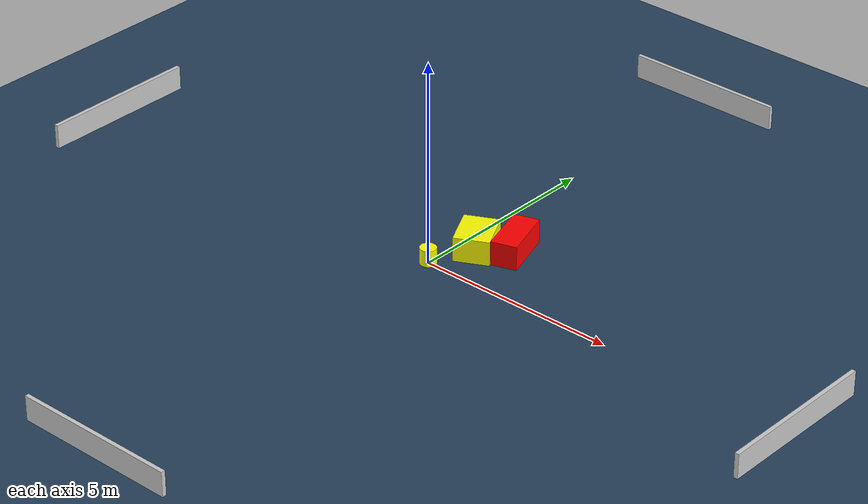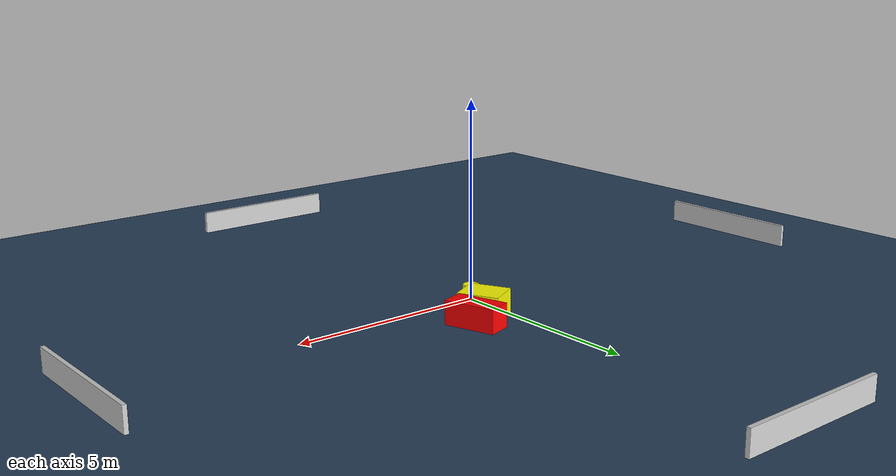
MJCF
<?xml version="1.0" ?>
<mujoco model="generated_environment">
  <option timestep="0.01" integrator="RK4" cone="elliptic"/>
  <default>
    <geom density="1"/>
  </default>
  <asset>
    <texture builtin="gradient" height="3072" name="skybox" rgb1="0.3 0.5 0.7" rgb2="0 0 0" type="skybox" width="512"/>
    <texture builtin="checker" height="300" name="groundplane" rgb1="0.2 0.3 0.4" rgb2="0.1 0.2 0.3" type="2d" width="300"/>
    <material name="groundplane" reflectance="0.2" texrepeat="5 5" texture="groundplane"/>
  </asset>
  <worldbody>
    <light dir="0 0 -1" directional="true" pos="0 0 1.5"/>
    <geom condim="3" friction="0.5 0.005 0.001" material="groundplane" name="floor" pos="0 0 0" size="0 0 0.05" type="plane"/>
    <body name="walls">
      <geom name="wall_1" condim="4" pos="-10.0 0.0 0.3" rgba="0.800000011920929 0.800000011920929 0.800000011920929 1.0" size="0.05 2.0 0.3" type="box"/>
      <geom name="wall_2" condim="4" pos="10.0 0.0 0.3" rgba="0.800000011920929 0.800000011920929 0.800000011920929 1.0" size="0.05 2.0 0.3" type="box"/>
      <geom name="wall_3" condim="4" pos="0.0 -10.0 0.3" rgba="0.800000011920929 0.800000011920929 0.800000011920929 1.0" size="2.0 0.05 0.3" type="box"/>
      <geom name="wall_4" condim="4" pos="0.0 10.0 0.3" rgba="0.800000011920929 0.800000011920929 0.800000011920929 1.0" size="2.0 0.05 0.3" type="box"/>
    </body>
    <body name="robot">
      <joint name="joint_x" type="slide" pos="0 0 0" axis="1 0 0"/>
      <joint name="joint_y" type="slide" pos="0 0 0" axis="0 1 0"/>
      <geom name="robot" type="cylinder" pos="0.0 0.0 0.2" size="0.2 0.2 0.0" mass="5.0" friction="1.0 0.005 0.0001" condim="4" rgba="1.0 1.0 0.0 1.0"/>
    </body>
    <body name="obstacle_1_movable">
      <geom name="obstacle_1_movable" condim="4" pos="0.48953003460540334 1.0697066180705537 0.3" euler="0 0 27.185673004473028" friction="0.0 0.005 0.001" rgba="1.0 1.0 0.0 1.0" size="0.4248592371224361 0.5242419963028581 0.3" type="box" mass="0.1"/>
      <joint type="free"/>
    </body>
    <body name="obstacle_2_static">
      <geom name="obstacle_2_static" condim="4" pos="1.1802044069515836 1.575942164808961 0.3" euler="0 0 197.62425872341575" friction="0.0 0.005 0.001" rgba="1.0 0.0 0.0 1.0" size="0.3130364380121735 0.6590598977370811 0.3" type="box"/>
    </body>
  </worldbody>
  <actuator>
    <motor name="actuator_x" joint="joint_x" gear="1" ctrlrange="-1 1"/>
    <motor name="actuator_y" joint="joint_y" gear="1" ctrlrange="-1 1"/>
  </actuator>
</mujoco>
